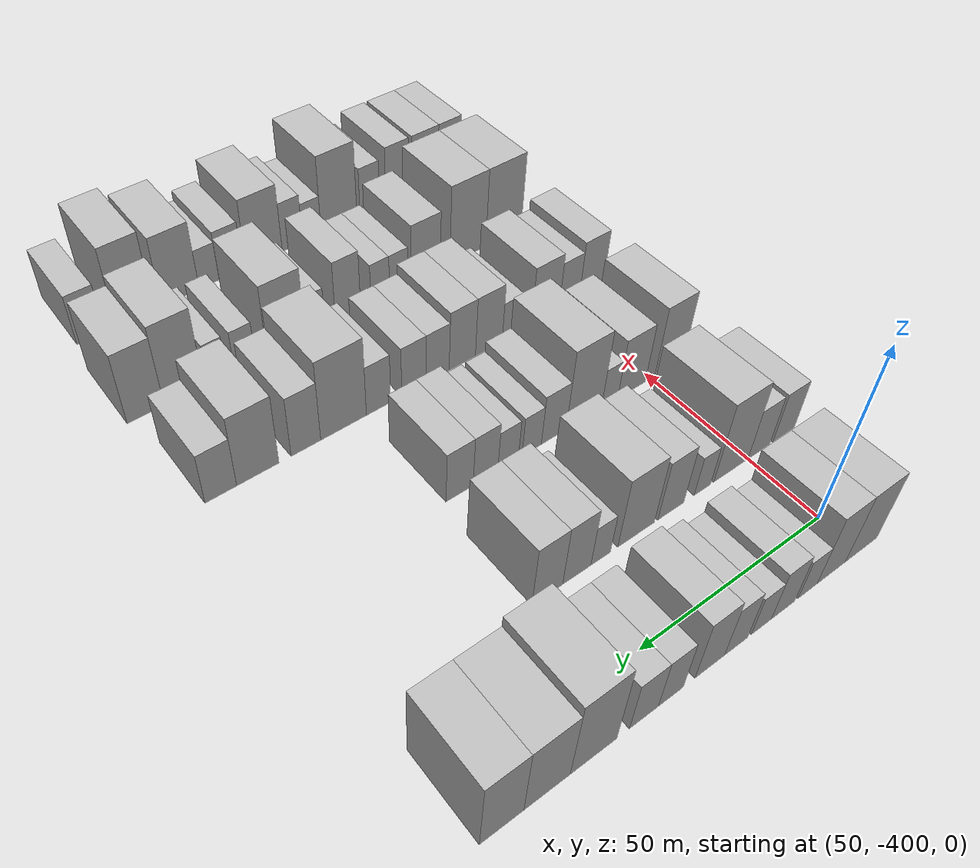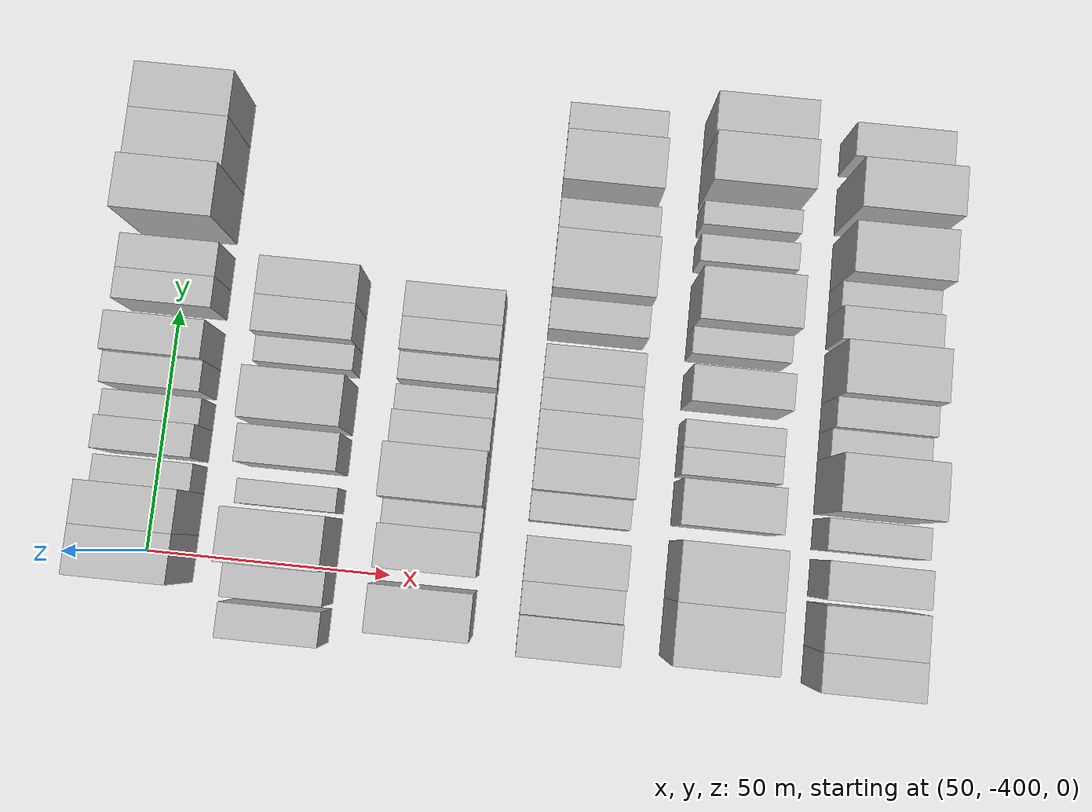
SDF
<sdf version="1.6">
 <world name="default">
  <model name="building_13">
   <static>1</static>
   <pose>50.0000 -400.6687 0 0.000000 0.000000 0.000000</pose>
   <link name="link">
    <pose>0 0 10.50 0 0 0</pose>
    <collision name="collision"><geometry><box><size>20.0000 9.6172 21.0000</size></box></geometry></collision>
    <visual name="visual">
     <cast_shadows>0</cast_shadows>
     <geometry><box><size>20.0000 9.6172 21.0000</size></box></geometry>
     <material>
      <script>
       <uri>model://HANNAS_wall/materials/scripts</uri>
       <uri>model://HANNAS_wall/materials/textures</uri>
       <name>vrc/HANNAS_wall</name>
      </script>
     </material>
    </visual>
   </link>
  </model>
  <model name="building_14">
   <static>1</static>
   <pose>50.0000 -391.6522 0 0.000000 0.000000 0.000000</pose>
   <link name="link">
    <pose>0 0 10.50 0 0 0</pose>
    <collision name="collision"><geometry><box><size>20.0000 8.4159 21.0000</size></box></geometry></collision>
    <visual name="visual">
     <cast_shadows>0</cast_shadows>
     <geometry><box><size>20.0000 8.4159 21.0000</size></box></geometry>
     <material>
      <script>
       <uri>model://HANNAS_wall/materials/scripts</uri>
       <uri>model://HANNAS_wall/materials/textures</uri>
       <name>vrc/HANNAS_wall</name>
      </script>
     </material>
    </visual>
   </link>
  </model>
  <model name="building_15">
   <static>1</static>
   <pose>50.0000 -384.7010 0 0.000000 0.000000 0.000000</pose>
   <link name="link">
    <pose>0 0 6.00 0 0 0</pose>
    <collision name="collision"><geometry><box><size>20.0000 5.4865 12.0000</size></box></geometry></collision>
    <visual name="visual">
     <cast_shadows>0</cast_shadows>
     <geometry><box><size>20.0000 5.4865 12.0000</size></box></geometry>
     <material>
      <script>
       <uri>model://HANNAS_wall/materials/scripts</uri>
       <uri>model://HANNAS_wall/materials/textures</uri>
       <name>vrc/HANNAS_wall</name>
      </script>
     </material>
    </visual>
   </link>
  </model>
  <model name="building_16">
   <static>1</static>
   <pose>50.0000 -377.6718 0 0.000000 0.000000 0.000000</pose>
   <link name="link">
    <pose>0 0 7.50 0 0 0</pose>
    <collision name="collision"><geometry><box><size>20.0000 6.5717 15.0000</size></box></geometry></collision>
    <visual name="visual">
     <cast_shadows>0</cast_shadows>
     <geometry><box><size>20.0000 6.5717 15.0000</size></box></geometry>
     <material>
      <script>
       <uri>model://HANNAS_wall/materials/scripts</uri>
       <uri>model://HANNAS_wall/materials/textures</uri>
       <name>vrc/HANNAS_wall</name>
      </script>
     </material>
    </visual>
   </link>
  </model>
  <model name="building_17">
   <static>1</static>
   <pose>50.0000 -371.6435 0 0.000000 0.000000 0.000000</pose>
   <link name="link">
    <pose>0 0 6.00 0 0 0</pose>
    <collision name="collision"><geometry><box><size>20.0000 5.4849 12.0000</size></box></geometry></collision>
    <visual name="visual">
     <cast_shadows>0</cast_shadows>
     <geometry><box><size>20.0000 5.4849 12.0000</size></box></geometry>
     <material>
      <script>
       <uri>model://HANNAS_wall/materials/scripts</uri>
       <uri>model://HANNAS_wall/materials/textures</uri>
       <name>vrc/HANNAS_wall</name>
      </script>
     </material>
    </visual>
   </link>
  </model>
  <model name="building_18">
   <static>1</static>
   <pose>50.0000 -364.8163 0 0.000000 0.000000 0.000000</pose>
   <link name="link">
    <pose>0 0 7.50 0 0 0</pose>
    <collision name="collision"><geometry><box><size>20.0000 6.1695 15.0000</size></box></geometry></collision>
    <visual name="visual">
     <cast_shadows>0</cast_shadows>
     <geometry><box><size>20.0000 6.1695 15.0000</size></box></geometry>
     <material>
      <script>
       <uri>model://HANNAS_wall/materials/scripts</uri>
       <uri>model://HANNAS_wall/materials/textures</uri>
       <name>vrc/HANNAS_wall</name>
      </script>
     </material>
    </visual>
   </link>
  </model>
  <model name="building_19">
   <static>1</static>
   <pose>50.0000 -357.8892 0 0.000000 0.000000 0.000000</pose>
   <link name="link">
    <pose>0 0 9.00 0 0 0</pose>
    <collision name="collision"><geometry><box><size>20.0000 7.6846 18.0000</size></box></geometry></collision>
    <visual name="visual">
     <cast_shadows>0</cast_shadows>
     <geometry><box><size>20.0000 7.6846 18.0000</size></box></geometry>
     <material>
      <script>
       <uri>model://HANNAS_wall/materials/scripts</uri>
       <uri>model://HANNAS_wall/materials/textures</uri>
       <name>vrc/HANNAS_wall</name>
      </script>
     </material>
    </visual>
   </link>
  </model>
  <model name="building_20">
   <static>1</static>
   <pose>50.0000 -347.9178 0 0.000000 0.000000 0.000000</pose>
   <link name="link">
    <pose>0 0 7.50 0 0 0</pose>
    <collision name="collision"><geometry><box><size>20.0000 6.2582 15.0000</size></box></geometry></collision>
    <visual name="visual">
     <cast_shadows>0</cast_shadows>
     <geometry><box><size>20.0000 6.2582 15.0000</size></box></geometry>
     <material>
      <script>
       <uri>model://HANNAS_wall/materials/scripts</uri>
       <uri>model://HANNAS_wall/materials/textures</uri>
       <name>vrc/HANNAS_wall</name>
      </script>
     </material>
    </visual>
   </link>
  </model>
  <model name="building_21">
   <static>1</static>
   <pose>50.0000 -341.2907 0 0.000000 0.000000 0.000000</pose>
   <link name="link">
    <pose>0 0 7.50 0 0 0</pose>
    <collision name="collision"><geometry><box><size>20.0000 6.9960 15.0000</size></box></geometry></collision>
    <visual name="visual">
     <cast_shadows>0</cast_shadows>
     <geometry><box><size>20.0000 6.9960 15.0000</size></box></geometry>
     <material>
      <script>
       <uri>model://HANNAS_wall/materials/scripts</uri>
       <uri>model://HANNAS_wall/materials/textures</uri>
       <name>vrc/HANNAS_wall</name>
      </script>
     </material>
    </visual>
   </link>
  </model>
  <model name="building_22">
   <static>1</static>
   <pose>50.0000 -329.3862 0 0.000000 0.000000 0.000000</pose>
   <link name="link">
    <pose>0 0 12.00 0 0 0</pose>
    <collision name="collision"><geometry><box><size>20.0000 10.8130 24.0000</size></box></geometry></collision>
    <visual name="visual">
     <cast_shadows>0</cast_shadows>
     <geometry><box><size>20.0000 10.8130 24.0000</size></box></geometry>
     <material>
      <script>
       <uri>model://HANNAS_wall/materials/scripts</uri>
       <uri>model://HANNAS_wall/materials/textures</uri>
       <name>vrc/HANNAS_wall</name>
      </script>
     </material>
    </visual>
   </link>
  </model>
  <model name="building_23">
   <static>1</static>
   <pose>50.0000 -318.8442 0 0.000000 0.000000 0.000000</pose>
   <link name="link">
    <pose>0 0 10.50 0 0 0</pose>
    <collision name="collision"><geometry><box><size>20.0000 10.2711 21.0000</size></box></geometry></collision>
    <visual name="visual">
     <cast_shadows>0</cast_shadows>
     <geometry><box><size>20.0000 10.2711 21.0000</size></box></geometry>
     <material>
      <script>
       <uri>model://HANNAS_wall/materials/scripts</uri>
       <uri>model://HANNAS_wall/materials/textures</uri>
       <name>vrc/HANNAS_wall</name>
      </script>
     </material>
    </visual>
   </link>
  </model>
  <model name="building_24">
   <static>1</static>
   <pose>50.0000 -308.9959 0 0.000000 0.000000 0.000000</pose>
   <link name="link">
    <pose>0 0 10.50 0 0 0</pose>
    <collision name="collision"><geometry><box><size>20.0000 9.4255 21.0000</size></box></geometry></collision>
    <visual name="visual">
     <cast_shadows>0</cast_shadows>
     <geometry><box><size>20.0000 9.4255 21.0000</size></box></geometry>
     <material>
      <script>
       <uri>model://HANNAS_wall/materials/scripts</uri>
       <uri>model://HANNAS_wall/materials/textures</uri>
       <name>vrc/HANNAS_wall</name>
      </script>
     </material>
    </visual>
   </link>
  </model>
  <model name="building_126">
   <static>1</static>
   <pose>79.0000 -411.2597 0 0.000000 0.000000 0.000000</pose>
   <link name="link">
    <pose>0 0 7.50 0 0 0</pose>
    <collision name="collision"><geometry><box><size>20.0000 6.8143 15.0000</size></box></geometry></collision>
    <visual name="visual">
     <cast_shadows>0</cast_shadows>
     <geometry><box><size>20.0000 6.8143 15.0000</size></box></geometry>
     <material>
      <script>
       <uri>model://HANNAS_wall/materials/scripts</uri>
       <uri>model://HANNAS_wall/materials/textures</uri>
       <name>vrc/HANNAS_wall</name>
      </script>
     </material>
    </visual>
   </link>
  </model>
  <model name="building_127">
   <static>1</static>
   <pose>79.0000 -403.4460 0 0.000000 0.000000 0.000000</pose>
   <link name="link">
    <pose>0 0 7.50 0 0 0</pose>
    <collision name="collision"><geometry><box><size>20.0000 6.8130 15.0000</size></box></geometry></collision>
    <visual name="visual">
     <cast_shadows>0</cast_shadows>
     <geometry><box><size>20.0000 6.8130 15.0000</size></box></geometry>
     <material>
      <script>
       <uri>model://HANNAS_wall/materials/scripts</uri>
       <uri>model://HANNAS_wall/materials/textures</uri>
       <name>vrc/HANNAS_wall</name>
      </script>
     </material>
    </visual>
   </link>
  </model>
  <model name="building_128">
   <static>1</static>
   <pose>79.0000 -394.8496 0 0.000000 0.000000 0.000000</pose>
   <link name="link">
    <pose>0 0 12.00 0 0 0</pose>
    <collision name="collision"><geometry><box><size>20.0000 10.3798 24.0000</size></box></geometry></collision>
    <visual name="visual">
     <cast_shadows>0</cast_shadows>
     <geometry><box><size>20.0000 10.3798 24.0000</size></box></geometry>
     <material>
      <script>
       <uri>model://HANNAS_wall/materials/scripts</uri>
       <uri>model://HANNAS_wall/materials/textures</uri>
       <name>vrc/HANNAS_wall</name>
      </script>
     </material>
    </visual>
   </link>
  </model>
  <model name="building_129">
   <static>1</static>
   <pose>79.0000 -386.2462 0 0.000000 0.000000 0.000000</pose>
   <link name="link">
    <pose>0 0 6.00 0 0 0</pose>
    <collision name="collision"><geometry><box><size>20.0000 4.8270 12.0000</size></box></geometry></collision>
    <visual name="visual">
     <cast_shadows>0</cast_shadows>
     <geometry><box><size>20.0000 4.8270 12.0000</size></box></geometry>
     <material>
      <script>
       <uri>model://HANNAS_wall/materials/scripts</uri>
       <uri>model://HANNAS_wall/materials/textures</uri>
       <name>vrc/HANNAS_wall</name>
      </script>
     </material>
    </visual>
   </link>
  </model>
  <model name="building_130">
   <static>1</static>
   <pose>79.0000 -377.1368 0 0.000000 0.000000 0.000000</pose>
   <link name="link">
    <pose>0 0 9.00 0 0 0</pose>
    <collision name="collision"><geometry><box><size>20.0000 7.3917 18.0000</size></box></geometry></collision>
    <visual name="visual">
     <cast_shadows>0</cast_shadows>
     <geometry><box><size>20.0000 7.3917 18.0000</size></box></geometry>
     <material>
      <script>
       <uri>model://HANNAS_wall/materials/scripts</uri>
       <uri>model://HANNAS_wall/materials/textures</uri>
       <name>vrc/HANNAS_wall</name>
      </script>
     </material>
    </visual>
   </link>
  </model>
  <model name="building_131">
   <static>1</static>
   <pose>79.0000 -367.4092 0 0.000000 0.000000 0.000000</pose>
   <link name="link">
    <pose>0 0 10.50 0 0 0</pose>
    <collision name="collision"><geometry><box><size>20.0000 10.0636 21.0000</size></box></geometry></collision>
    <visual name="visual">
     <cast_shadows>0</cast_shadows>
     <geometry><box><size>20.0000 10.0636 21.0000</size></box></geometry>
     <material>
      <script>
       <uri>model://HANNAS_wall/materials/scripts</uri>
       <uri>model://HANNAS_wall/materials/textures</uri>
       <name>vrc/HANNAS_wall</name>
      </script>
     </material>
    </visual>
   </link>
  </model>
  <model name="building_132">
   <static>1</static>
   <pose>79.0000 -357.7747 0 0.000000 0.000000 0.000000</pose>
   <link name="link">
    <pose>0 0 6.00 0 0 0</pose>
    <collision name="collision"><geometry><box><size>20.0000 5.2054 12.0000</size></box></geometry></collision>
    <visual name="visual">
     <cast_shadows>0</cast_shadows>
     <geometry><box><size>20.0000 5.2054 12.0000</size></box></geometry>
     <material>
      <script>
       <uri>model://HANNAS_wall/materials/scripts</uri>
       <uri>model://HANNAS_wall/materials/textures</uri>
       <name>vrc/HANNAS_wall</name>
      </script>
     </material>
    </visual>
   </link>
  </model>
  <model name="building_133">
   <static>1</static>
   <pose>79.0000 -351.5223 0 0.000000 0.000000 0.000000</pose>
   <link name="link">
    <pose>0 0 9.00 0 0 0</pose>
    <collision name="collision"><geometry><box><size>20.0000 7.2995 18.0000</size></box></geometry></collision>
    <visual name="visual">
     <cast_shadows>0</cast_shadows>
     <geometry><box><size>20.0000 7.2995 18.0000</size></box></geometry>
     <material>
      <script>
       <uri>model://HANNAS_wall/materials/scripts</uri>
       <uri>model://HANNAS_wall/materials/textures</uri>
       <name>vrc/HANNAS_wall</name>
      </script>
     </material>
    </visual>
   </link>
  </model>
  <model name="building_134">
   <static>1</static>
   <pose>79.0000 -343.9998 0 0.000000 0.000000 0.000000</pose>
   <link name="link">
    <pose>0 0 9.00 0 0 0</pose>
    <collision name="collision"><geometry><box><size>20.0000 7.7453 18.0000</size></box></geometry></collision>
    <visual name="visual">
     <cast_shadows>0</cast_shadows>
     <geometry><box><size>20.0000 7.7453 18.0000</size></box></geometry>
     <material>
      <script>
       <uri>model://HANNAS_wall/materials/scripts</uri>
       <uri>model://HANNAS_wall/materials/textures</uri>
       <name>vrc/HANNAS_wall</name>
      </script>
     </material>
    </visual>
   </link>
  </model>
  <model name="building_237">
   <static>1</static>
   <pose>108.0000 -405.8018 0 0.000000 0.000000 0.000000</pose>
   <link name="link">
    <pose>0 0 10.50 0 0 0</pose>
    <collision name="collision"><geometry><box><size>20.0000 9.1742 21.0000</size></box></geometry></collision>
    <visual name="visual">
     <cast_shadows>0</cast_shadows>
     <geometry><box><size>20.0000 9.1742 21.0000</size></box></geometry>
     <material>
      <script>
       <uri>model://HANNAS_wall/materials/scripts</uri>
       <uri>model://HANNAS_wall/materials/textures</uri>
       <name>vrc/HANNAS_wall</name>
      </script>
     </material>
    </visual>
   </link>
  </model>
  <model name="building_238">
   <static>1</static>
   <pose>108.0000 -393.9597 0 0.000000 0.000000 0.000000</pose>
   <link name="link">
    <pose>0 0 9.00 0 0 0</pose>
    <collision name="collision"><geometry><box><size>20.0000 8.5100 18.0000</size></box></geometry></collision>
    <visual name="visual">
     <cast_shadows>0</cast_shadows>
     <geometry><box><size>20.0000 8.5100 18.0000</size></box></geometry>
     <material>
      <script>
       <uri>model://HANNAS_wall/materials/scripts</uri>
       <uri>model://HANNAS_wall/materials/textures</uri>
       <name>vrc/HANNAS_wall</name>
      </script>
     </material>
    </visual>
   </link>
  </model>
  <model name="building_239">
   <static>1</static>
   <pose>108.0000 -387.2500 0 0.000000 0.000000 0.000000</pose>
   <link name="link">
    <pose>0 0 6.00 0 0 0</pose>
    <collision name="collision"><geometry><box><size>20.0000 4.9093 12.0000</size></box></geometry></collision>
    <visual name="visual">
     <cast_shadows>0</cast_shadows>
     <geometry><box><size>20.0000 4.9093 12.0000</size></box></geometry>
     <material>
      <script>
       <uri>model://HANNAS_wall/materials/scripts</uri>
       <uri>model://HANNAS_wall/materials/textures</uri>
       <name>vrc/HANNAS_wall</name>
      </script>
     </material>
    </visual>
   </link>
  </model>
  <model name="building_240">
   <static>1</static>
   <pose>108.0000 -379.6127 0 0.000000 0.000000 0.000000</pose>
   <link name="link">
    <pose>0 0 12.00 0 0 0</pose>
    <collision name="collision"><geometry><box><size>20.0000 10.3654 24.0000</size></box></geometry></collision>
    <visual name="visual">
     <cast_shadows>0</cast_shadows>
     <geometry><box><size>20.0000 10.3654 24.0000</size></box></geometry>
     <material>
      <script>
       <uri>model://HANNAS_wall/materials/scripts</uri>
       <uri>model://HANNAS_wall/materials/textures</uri>
       <name>vrc/HANNAS_wall</name>
      </script>
     </material>
    </visual>
   </link>
  </model>
  <model name="building_241">
   <static>1</static>
   <pose>108.0000 -370.9066 0 0.000000 0.000000 0.000000</pose>
   <link name="link">
    <pose>0 0 7.50 0 0 0</pose>
    <collision name="collision"><geometry><box><size>20.0000 7.0468 15.0000</size></box></geometry></collision>
    <visual name="visual">
     <cast_shadows>0</cast_shadows>
     <geometry><box><size>20.0000 7.0468 15.0000</size></box></geometry>
     <material>
      <script>
       <uri>model://HANNAS_wall/materials/scripts</uri>
       <uri>model://HANNAS_wall/materials/textures</uri>
       <name>vrc/HANNAS_wall</name>
      </script>
     </material>
    </visual>
   </link>
  </model>
  <model name="building_242">
   <static>1</static>
   <pose>108.0000 -364.6866 0 0.000000 0.000000 0.000000</pose>
   <link name="link">
    <pose>0 0 6.00 0 0 0</pose>
    <collision name="collision"><geometry><box><size>20.0000 5.3931 12.0000</size></box></geometry></collision>
    <visual name="visual">
     <cast_shadows>0</cast_shadows>
     <geometry><box><size>20.0000 5.3931 12.0000</size></box></geometry>
     <material>
      <script>
       <uri>model://HANNAS_wall/materials/scripts</uri>
       <uri>model://HANNAS_wall/materials/textures</uri>
       <name>vrc/HANNAS_wall</name>
      </script>
     </material>
    </visual>
   </link>
  </model>
  <model name="building_243">
   <static>1</static>
   <pose>108.0000 -358.1893 0 0.000000 0.000000 0.000000</pose>
   <link name="link">
    <pose>0 0 6.00 0 0 0</pose>
    <collision name="collision"><geometry><box><size>20.0000 5.6014 12.0000</size></box></geometry></collision>
    <visual name="visual">
     <cast_shadows>0</cast_shadows>
     <geometry><box><size>20.0000 5.6014 12.0000</size></box></geometry>
     <material>
      <script>
       <uri>model://HANNAS_wall/materials/scripts</uri>
       <uri>model://HANNAS_wall/materials/textures</uri>
       <name>vrc/HANNAS_wall</name>
      </script>
     </material>
    </visual>
   </link>
  </model>
  <model name="building_244">
   <static>1</static>
   <pose>108.0000 -352.0878 0 0.000000 0.000000 0.000000</pose>
   <link name="link">
    <pose>0 0 7.50 0 0 0</pose>
    <collision name="collision"><geometry><box><size>20.0000 6.6018 15.0000</size></box></geometry></collision>
    <visual name="visual">
     <cast_shadows>0</cast_shadows>
     <geometry><box><size>20.0000 6.6018 15.0000</size></box></geometry>
     <material>
      <script>
       <uri>model://HANNAS_wall/materials/scripts</uri>
       <uri>model://HANNAS_wall/materials/textures</uri>
       <name>vrc/HANNAS_wall</name>
      </script>
     </material>
    </visual>
   </link>
  </model>
  <model name="building_245">
   <static>1</static>
   <pose>108.0000 -345.2501 0 0.000000 0.000000 0.000000</pose>
   <link name="link">
    <pose>0 0 7.50 0 0 0</pose>
    <collision name="collision"><geometry><box><size>20.0000 7.0736 15.0000</size></box></geometry></collision>
    <visual name="visual">
     <cast_shadows>0</cast_shadows>
     <geometry><box><size>20.0000 7.0736 15.0000</size></box></geometry>
     <material>
      <script>
       <uri>model://HANNAS_wall/materials/scripts</uri>
       <uri>model://HANNAS_wall/materials/textures</uri>
       <name>vrc/HANNAS_wall</name>
      </script>
     </material>
    </visual>
   </link>
  </model>
  <model name="building_352">
   <static>1</static>
   <pose>137.0000 -408.1759 0 0.000000 0.000000 0.000000</pose>
   <link name="link">
    <pose>0 0 9.00 0 0 0</pose>
    <collision name="collision"><geometry><box><size>20.0000 7.8254 18.0000</size></box></geometry></collision>
    <visual name="visual">
     <cast_shadows>0</cast_shadows>
     <geometry><box><size>20.0000 7.8254 18.0000</size></box></geometry>
     <material>
      <script>
       <uri>model://HANNAS_wall/materials/scripts</uri>
       <uri>model://HANNAS_wall/materials/textures</uri>
       <name>vrc/HANNAS_wall</name>
      </script>
     </material>
    </visual>
   </link>
  </model>
  <model name="building_353">
   <static>1</static>
   <pose>137.0000 -401.0369 0 0.000000 0.000000 0.000000</pose>
   <link name="link">
    <pose>0 0 7.50 0 0 0</pose>
    <collision name="collision"><geometry><box><size>20.0000 6.4526 15.0000</size></box></geometry></collision>
    <visual name="visual">
     <cast_shadows>0</cast_shadows>
     <geometry><box><size>20.0000 6.4526 15.0000</size></box></geometry>
     <material>
      <script>
       <uri>model://HANNAS_wall/materials/scripts</uri>
       <uri>model://HANNAS_wall/materials/textures</uri>
       <name>vrc/HANNAS_wall</name>
      </script>
     </material>
    </visual>
   </link>
  </model>
  <model name="building_354">
   <static>1</static>
   <pose>137.0000 -393.5032 0 0.000000 0.000000 0.000000</pose>
   <link name="link">
    <pose>0 0 9.00 0 0 0</pose>
    <collision name="collision"><geometry><box><size>20.0000 8.6146 18.0000</size></box></geometry></collision>
    <visual name="visual">
     <cast_shadows>0</cast_shadows>
     <geometry><box><size>20.0000 8.6146 18.0000</size></box></geometry>
     <material>
      <script>
       <uri>model://HANNAS_wall/materials/scripts</uri>
       <uri>model://HANNAS_wall/materials/textures</uri>
       <name>vrc/HANNAS_wall</name>
      </script>
     </material>
    </visual>
   </link>
  </model>
  <model name="building_355">
   <static>1</static>
   <pose>137.0000 -383.2529 0 0.000000 0.000000 0.000000</pose>
   <link name="link">
    <pose>0 0 6.00 0 0 0</pose>
    <collision name="collision"><geometry><box><size>20.0000 5.8861 12.0000</size></box></geometry></collision>
    <visual name="visual">
     <cast_shadows>0</cast_shadows>
     <geometry><box><size>20.0000 5.8861 12.0000</size></box></geometry>
     <material>
      <script>
       <uri>model://HANNAS_wall/materials/scripts</uri>
       <uri>model://HANNAS_wall/materials/textures</uri>
       <name>vrc/HANNAS_wall</name>
      </script>
     </material>
    </visual>
   </link>
  </model>
  <model name="building_356">
   <static>1</static>
   <pose>137.0000 -376.3391 0 0.000000 0.000000 0.000000</pose>
   <link name="link">
    <pose>0 0 9.00 0 0 0</pose>
    <collision name="collision"><geometry><box><size>20.0000 7.9416 18.0000</size></box></geometry></collision>
    <visual name="visual">
     <cast_shadows>0</cast_shadows>
     <geometry><box><size>20.0000 7.9416 18.0000</size></box></geometry>
     <material>
      <script>
       <uri>model://HANNAS_wall/materials/scripts</uri>
       <uri>model://HANNAS_wall/materials/textures</uri>
       <name>vrc/HANNAS_wall</name>
      </script>
     </material>
    </visual>
   </link>
  </model>
  <model name="building_357">
   <static>1</static>
   <pose>137.0000 -368.5552 0 0.000000 0.000000 0.000000</pose>
   <link name="link">
    <pose>0 0 9.00 0 0 0</pose>
    <collision name="collision"><geometry><box><size>20.0000 7.6262 18.0000</size></box></geometry></collision>
    <visual name="visual">
     <cast_shadows>0</cast_shadows>
     <geometry><box><size>20.0000 7.6262 18.0000</size></box></geometry>
     <material>
      <script>
       <uri>model://HANNAS_wall/materials/scripts</uri>
       <uri>model://HANNAS_wall/materials/textures</uri>
       <name>vrc/HANNAS_wall</name>
      </script>
     </material>
    </visual>
   </link>
  </model>
  <model name="building_358">
   <static>1</static>
   <pose>137.0000 -361.4488 0 0.000000 0.000000 0.000000</pose>
   <link name="link">
    <pose>0 0 7.50 0 0 0</pose>
    <collision name="collision"><geometry><box><size>20.0000 6.5866 15.0000</size></box></geometry></collision>
    <visual name="visual">
     <cast_shadows>0</cast_shadows>
     <geometry><box><size>20.0000 6.5866 15.0000</size></box></geometry>
     <material>
      <script>
       <uri>model://HANNAS_wall/materials/scripts</uri>
       <uri>model://HANNAS_wall/materials/textures</uri>
       <name>vrc/HANNAS_wall</name>
      </script>
     </material>
    </visual>
   </link>
  </model>
  <model name="building_359">
   <static>1</static>
   <pose>137.0000 -354.7890 0 0.000000 0.000000 0.000000</pose>
   <link name="link">
    <pose>0 0 7.50 0 0 0</pose>
    <collision name="collision"><geometry><box><size>20.0000 6.7330 15.0000</size></box></geometry></collision>
    <visual name="visual">
     <cast_shadows>0</cast_shadows>
     <geometry><box><size>20.0000 6.7330 15.0000</size></box></geometry>
     <material>
      <script>
       <uri>model://HANNAS_wall/materials/scripts</uri>
       <uri>model://HANNAS_wall/materials/textures</uri>
       <name>vrc/HANNAS_wall</name>
      </script>
     </material>
    </visual>
   </link>
  </model>
  <model name="building_360">
   <static>1</static>
   <pose>137.0000 -345.1615 0 0.000000 0.000000 0.000000</pose>
   <link name="link">
    <pose>0 0 7.50 0 0 0</pose>
    <collision name="collision"><geometry><box><size>20.0000 6.5219 15.0000</size></box></geometry></collision>
    <visual name="visual">
     <cast_shadows>0</cast_shadows>
     <geometry><box><size>20.0000 6.5219 15.0000</size></box></geometry>
     <material>
      <script>
       <uri>model://HANNAS_wall/materials/scripts</uri>
       <uri>model://HANNAS_wall/materials/textures</uri>
       <name>vrc/HANNAS_wall</name>
      </script>
     </material>
    </visual>
   </link>
  </model>
  <model name="building_361">
   <static>1</static>
   <pose>137.0000 -335.9525 0 0.000000 0.000000 0.000000</pose>
   <link name="link">
    <pose>0 0 12.00 0 0 0</pose>
    <collision name="collision"><geometry><box><size>20.0000 11.8962 24.0000</size></box></geometry></collision>
    <visual name="visual">
     <cast_shadows>0</cast_shadows>
     <geometry><box><size>20.0000 11.8962 24.0000</size></box></geometry>
     <material>
      <script>
       <uri>model://HANNAS_wall/materials/scripts</uri>
       <uri>model://HANNAS_wall/materials/textures</uri>
       <name>vrc/HANNAS_wall</name>
      </script>
     </material>
    </visual>
   </link>
  </model>
  <model name="building_362">
   <static>1</static>
   <pose>137.0000 -326.2628 0 0.000000 0.000000 0.000000</pose>
   <link name="link">
    <pose>0 0 9.00 0 0 0</pose>
    <collision name="collision"><geometry><box><size>20.0000 7.4832 18.0000</size></box></geometry></collision>
    <visual name="visual">
     <cast_shadows>0</cast_shadows>
     <geometry><box><size>20.0000 7.4832 18.0000</size></box></geometry>
     <material>
      <script>
       <uri>model://HANNAS_wall/materials/scripts</uri>
       <uri>model://HANNAS_wall/materials/textures</uri>
       <name>vrc/HANNAS_wall</name>
      </script>
     </material>
    </visual>
   </link>
  </model>
  <model name="building_363">
   <static>1</static>
   <pose>137.0000 -314.4046 0 0.000000 0.000000 0.000000</pose>
   <link name="link">
    <pose>0 0 10.50 0 0 0</pose>
    <collision name="collision"><geometry><box><size>20.0000 10.2331 21.0000</size></box></geometry></collision>
    <visual name="visual">
     <cast_shadows>0</cast_shadows>
     <geometry><box><size>20.0000 10.2331 21.0000</size></box></geometry>
     <material>
      <script>
       <uri>model://HANNAS_wall/materials/scripts</uri>
       <uri>model://HANNAS_wall/materials/textures</uri>
       <name>vrc/HANNAS_wall</name>
      </script>
     </material>
    </visual>
   </link>
  </model>
  <model name="building_364">
   <static>1</static>
   <pose>137.0000 -305.5506 0 0.000000 0.000000 0.000000</pose>
   <link name="link">
    <pose>0 0 7.50 0 0 0</pose>
    <collision name="collision"><geometry><box><size>20.0000 7.4750 15.0000</size></box></geometry></collision>
    <visual name="visual">
     <cast_shadows>0</cast_shadows>
     <geometry><box><size>20.0000 7.4750 15.0000</size></box></geometry>
     <material>
      <script>
       <uri>model://HANNAS_wall/materials/scripts</uri>
       <uri>model://HANNAS_wall/materials/textures</uri>
       <name>vrc/HANNAS_wall</name>
      </script>
     </material>
    </visual>
   </link>
  </model>
  <model name="building_464">
   <static>1</static>
   <pose>166.0000 -404.5101 0 0.000000 0.000000 0.000000</pose>
   <link name="link">
    <pose>0 0 12.00 0 0 0</pose>
    <collision name="collision"><geometry><box><size>20.0000 11.7443 24.0000</size></box></geometry></collision>
    <visual name="visual">
     <cast_shadows>0</cast_shadows>
     <geometry><box><size>20.0000 11.7443 24.0000</size></box></geometry>
     <material>
      <script>
       <uri>model://HANNAS_wall/materials/scripts</uri>
       <uri>model://HANNAS_wall/materials/textures</uri>
       <name>vrc/HANNAS_wall</name>
      </script>
     </material>
    </visual>
   </link>
  </model>
  <model name="building_465">
   <static>1</static>
   <pose>166.0000 -392.9054 0 0.000000 0.000000 0.000000</pose>
   <link name="link">
    <pose>0 0 12.00 0 0 0</pose>
    <collision name="collision"><geometry><box><size>20.0000 11.4651 24.0000</size></box></geometry></collision>
    <visual name="visual">
     <cast_shadows>0</cast_shadows>
     <geometry><box><size>20.0000 11.4651 24.0000</size></box></geometry>
     <material>
      <script>
       <uri>model://HANNAS_wall/materials/scripts</uri>
       <uri>model://HANNAS_wall/materials/textures</uri>
       <name>vrc/HANNAS_wall</name>
      </script>
     </material>
    </visual>
   </link>
  </model>
  <model name="building_466">
   <static>1</static>
   <pose>166.0000 -379.6856 0 0.000000 0.000000 0.000000</pose>
   <link name="link">
    <pose>0 0 9.00 0 0 0</pose>
    <collision name="collision"><geometry><box><size>20.0000 8.9743 18.0000</size></box></geometry></collision>
    <visual name="visual">
     <cast_shadows>0</cast_shadows>
     <geometry><box><size>20.0000 8.9743 18.0000</size></box></geometry>
     <material>
      <script>
       <uri>model://HANNAS_wall/materials/scripts</uri>
       <uri>model://HANNAS_wall/materials/textures</uri>
       <name>vrc/HANNAS_wall</name>
      </script>
     </material>
    </visual>
   </link>
  </model>
  <model name="building_467">
   <static>1</static>
   <pose>166.0000 -371.4517 0 0.000000 0.000000 0.000000</pose>
   <link name="link">
    <pose>0 0 6.00 0 0 0</pose>
    <collision name="collision"><geometry><box><size>20.0000 5.4934 12.0000</size></box></geometry></collision>
    <visual name="visual">
     <cast_shadows>0</cast_shadows>
     <geometry><box><size>20.0000 5.4934 12.0000</size></box></geometry>
     <material>
      <script>
       <uri>model://HANNAS_wall/materials/scripts</uri>
       <uri>model://HANNAS_wall/materials/textures</uri>
       <name>vrc/HANNAS_wall</name>
      </script>
     </material>
    </visual>
   </link>
  </model>
  <model name="building_468">
   <static>1</static>
   <pose>166.0000 -365.9458 0 0.000000 0.000000 0.000000</pose>
   <link name="link">
    <pose>0 0 6.00 0 0 0</pose>
    <collision name="collision"><geometry><box><size>20.0000 5.5185 12.0000</size></box></geometry></collision>
    <visual name="visual">
     <cast_shadows>0</cast_shadows>
     <geometry><box><size>20.0000 5.5185 12.0000</size></box></geometry>
     <material>
      <script>
       <uri>model://HANNAS_wall/materials/scripts</uri>
       <uri>model://HANNAS_wall/materials/textures</uri>
       <name>vrc/HANNAS_wall</name>
      </script>
     </material>
    </visual>
   </link>
  </model>
  <model name="building_469">
   <static>1</static>
   <pose>166.0000 -356.5743 0 0.000000 0.000000 0.000000</pose>
   <link name="link">
    <pose>0 0 9.00 0 0 0</pose>
    <collision name="collision"><geometry><box><size>20.0000 7.2244 18.0000</size></box></geometry></collision>
    <visual name="visual">
     <cast_shadows>0</cast_shadows>
     <geometry><box><size>20.0000 7.2244 18.0000</size></box></geometry>
     <material>
      <script>
       <uri>model://HANNAS_wall/materials/scripts</uri>
       <uri>model://HANNAS_wall/materials/textures</uri>
       <name>vrc/HANNAS_wall</name>
      </script>
     </material>
    </visual>
   </link>
  </model>
  <model name="building_470">
   <static>1</static>
   <pose>166.0000 -347.2063 0 0.000000 0.000000 0.000000</pose>
   <link name="link">
    <pose>0 0 6.00 0 0 0</pose>
    <collision name="collision"><geometry><box><size>20.0000 5.5116 12.0000</size></box></geometry></collision>
    <visual name="visual">
     <cast_shadows>0</cast_shadows>
     <geometry><box><size>20.0000 5.5116 12.0000</size></box></geometry>
     <material>
      <script>
       <uri>model://HANNAS_wall/materials/scripts</uri>
       <uri>model://HANNAS_wall/materials/textures</uri>
       <name>vrc/HANNAS_wall</name>
      </script>
     </material>
    </visual>
   </link>
  </model>
  <model name="building_471">
   <static>1</static>
   <pose>166.0000 -339.2238 0 0.000000 0.000000 0.000000</pose>
   <link name="link">
    <pose>0 0 10.50 0 0 0</pose>
    <collision name="collision"><geometry><box><size>20.0000 10.4535 21.0000</size></box></geometry></collision>
    <visual name="visual">
     <cast_shadows>0</cast_shadows>
     <geometry><box><size>20.0000 10.4535 21.0000</size></box></geometry>
     <material>
      <script>
       <uri>model://HANNAS_wall/materials/scripts</uri>
       <uri>model://HANNAS_wall/materials/textures</uri>
       <name>vrc/HANNAS_wall</name>
      </script>
     </material>
    </visual>
   </link>
  </model>
  <model name="building_472">
   <static>1</static>
   <pose>166.0000 -328.2097 0 0.000000 0.000000 0.000000</pose>
   <link name="link">
    <pose>0 0 6.00 0 0 0</pose>
    <collision name="collision"><geometry><box><size>20.0000 5.5749 12.0000</size></box></geometry></collision>
    <visual name="visual">
     <cast_shadows>0</cast_shadows>
     <geometry><box><size>20.0000 5.5749 12.0000</size></box></geometry>
     <material>
      <script>
       <uri>model://HANNAS_wall/materials/scripts</uri>
       <uri>model://HANNAS_wall/materials/textures</uri>
       <name>vrc/HANNAS_wall</name>
      </script>
     </material>
    </visual>
   </link>
  </model>
  <model name="building_473">
   <static>1</static>
   <pose>166.0000 -320.9873 0 0.000000 0.000000 0.000000</pose>
   <link name="link">
    <pose>0 0 6.00 0 0 0</pose>
    <collision name="collision"><geometry><box><size>20.0000 4.8699 12.0000</size></box></geometry></collision>
    <visual name="visual">
     <cast_shadows>0</cast_shadows>
     <geometry><box><size>20.0000 4.8699 12.0000</size></box></geometry>
     <material>
      <script>
       <uri>model://HANNAS_wall/materials/scripts</uri>
       <uri>model://HANNAS_wall/materials/textures</uri>
       <name>vrc/HANNAS_wall</name>
      </script>
     </material>
    </visual>
   </link>
  </model>
  <model name="building_474">
   <static>1</static>
   <pose>166.0000 -312.5834 0 0.000000 0.000000 0.000000</pose>
   <link name="link">
    <pose>0 0 12.00 0 0 0</pose>
    <collision name="collision"><geometry><box><size>20.0000 9.9379 24.0000</size></box></geometry></collision>
    <visual name="visual">
     <cast_shadows>0</cast_shadows>
     <geometry><box><size>20.0000 9.9379 24.0000</size></box></geometry>
     <material>
      <script>
       <uri>model://HANNAS_wall/materials/scripts</uri>
       <uri>model://HANNAS_wall/materials/textures</uri>
       <name>vrc/HANNAS_wall</name>
      </script>
     </material>
    </visual>
   </link>
  </model>
  <model name="building_475">
   <static>1</static>
   <pose>166.0000 -303.1091 0 0.000000 0.000000 0.000000</pose>
   <link name="link">
    <pose>0 0 10.50 0 0 0</pose>
    <collision name="collision"><geometry><box><size>20.0000 9.0105 21.0000</size></box></geometry></collision>
    <visual name="visual">
     <cast_shadows>0</cast_shadows>
     <geometry><box><size>20.0000 9.0105 21.0000</size></box></geometry>
     <material>
      <script>
       <uri>model://HANNAS_wall/materials/scripts</uri>
       <uri>model://HANNAS_wall/materials/textures</uri>
       <name>vrc/HANNAS_wall</name>
      </script>
     </material>
    </visual>
   </link>
  </model>
  <model name="building_578">
   <static>1</static>
   <pose>195.0000 -409.1501 0 0.000000 0.000000 0.000000</pose>
   <link name="link">
    <pose>0 0 9.00 0 0 0</pose>
    <collision name="collision"><geometry><box><size>20.0000 7.5385 18.0000</size></box></geometry></collision>
    <visual name="visual">
     <cast_shadows>0</cast_shadows>
     <geometry><box><size>20.0000 7.5385 18.0000</size></box></geometry>
     <material>
      <script>
       <uri>model://HANNAS_wall/materials/scripts</uri>
       <uri>model://HANNAS_wall/materials/textures</uri>
       <name>vrc/HANNAS_wall</name>
      </script>
     </material>
    </visual>
   </link>
  </model>
  <model name="building_579">
   <static>1</static>
   <pose>195.0000 -400.9583 0 0.000000 0.000000 0.000000</pose>
   <link name="link">
    <pose>0 0 9.00 0 0 0</pose>
    <collision name="collision"><geometry><box><size>20.0000 8.8451 18.0000</size></box></geometry></collision>
    <visual name="visual">
     <cast_shadows>0</cast_shadows>
     <geometry><box><size>20.0000 8.8451 18.0000</size></box></geometry>
     <material>
      <script>
       <uri>model://HANNAS_wall/materials/scripts</uri>
       <uri>model://HANNAS_wall/materials/textures</uri>
       <name>vrc/HANNAS_wall</name>
      </script>
     </material>
    </visual>
   </link>
  </model>
  <model name="building_580">
   <static>1</static>
   <pose>195.0000 -391.8005 0 0.000000 0.000000 0.000000</pose>
   <link name="link">
    <pose>0 0 9.00 0 0 0</pose>
    <collision name="collision"><geometry><box><size>20.0000 7.4706 18.0000</size></box></geometry></collision>
    <visual name="visual">
     <cast_shadows>0</cast_shadows>
     <geometry><box><size>20.0000 7.4706 18.0000</size></box></geometry>
     <material>
      <script>
       <uri>model://HANNAS_wall/materials/scripts</uri>
       <uri>model://HANNAS_wall/materials/textures</uri>
       <name>vrc/HANNAS_wall</name>
      </script>
     </material>
    </visual>
   </link>
  </model>
  <model name="building_581">
   <static>1</static>
   <pose>195.0000 -382.9471 0 0.000000 0.000000 0.000000</pose>
   <link name="link">
    <pose>0 0 7.50 0 0 0</pose>
    <collision name="collision"><geometry><box><size>20.0000 6.2360 15.0000</size></box></geometry></collision>
    <visual name="visual">
     <cast_shadows>0</cast_shadows>
     <geometry><box><size>20.0000 6.2360 15.0000</size></box></geometry>
     <material>
      <script>
       <uri>model://HANNAS_wall/materials/scripts</uri>
       <uri>model://HANNAS_wall/materials/textures</uri>
       <name>vrc/HANNAS_wall</name>
      </script>
     </material>
    </visual>
   </link>
  </model>
  <model name="building_582">
   <static>1</static>
   <pose>195.0000 -373.2792 0 0.000000 0.000000 0.000000</pose>
   <link name="link">
    <pose>0 0 12.00 0 0 0</pose>
    <collision name="collision"><geometry><box><size>20.0000 11.0998 24.0000</size></box></geometry></collision>
    <visual name="visual">
     <cast_shadows>0</cast_shadows>
     <geometry><box><size>20.0000 11.0998 24.0000</size></box></geometry>
     <material>
      <script>
       <uri>model://HANNAS_wall/materials/scripts</uri>
       <uri>model://HANNAS_wall/materials/textures</uri>
       <name>vrc/HANNAS_wall</name>
      </script>
     </material>
    </visual>
   </link>
  </model>
  <model name="building_583">
   <static>1</static>
   <pose>195.0000 -364.9130 0 0.000000 0.000000 0.000000</pose>
   <link name="link">
    <pose>0 0 6.00 0 0 0</pose>
    <collision name="collision"><geometry><box><size>20.0000 5.6326 12.0000</size></box></geometry></collision>
    <visual name="visual">
     <cast_shadows>0</cast_shadows>
     <geometry><box><size>20.0000 5.6326 12.0000</size></box></geometry>
     <material>
      <script>
       <uri>model://HANNAS_wall/materials/scripts</uri>
       <uri>model://HANNAS_wall/materials/textures</uri>
       <name>vrc/HANNAS_wall</name>
      </script>
     </material>
    </visual>
   </link>
  </model>
  <model name="building_584">
   <static>1</static>
   <pose>195.0000 -359.0532 0 0.000000 0.000000 0.000000</pose>
   <link name="link">
    <pose>0 0 7.50 0 0 0</pose>
    <collision name="collision"><geometry><box><size>20.0000 6.0870 15.0000</size></box></geometry></collision>
    <visual name="visual">
     <cast_shadows>0</cast_shadows>
     <geometry><box><size>20.0000 6.0870 15.0000</size></box></geometry>
     <material>
      <script>
       <uri>model://HANNAS_wall/materials/scripts</uri>
       <uri>model://HANNAS_wall/materials/textures</uri>
       <name>vrc/HANNAS_wall</name>
      </script>
     </material>
    </visual>
   </link>
  </model>
  <model name="building_585">
   <static>1</static>
   <pose>195.0000 -350.7672 0 0.000000 0.000000 0.000000</pose>
   <link name="link">
    <pose>0 0 10.50 0 0 0</pose>
    <collision name="collision"><geometry><box><size>20.0000 10.4851 21.0000</size></box></geometry></collision>
    <visual name="visual">
     <cast_shadows>0</cast_shadows>
     <geometry><box><size>20.0000 10.4851 21.0000</size></box></geometry>
     <material>
      <script>
       <uri>model://HANNAS_wall/materials/scripts</uri>
       <uri>model://HANNAS_wall/materials/textures</uri>
       <name>vrc/HANNAS_wall</name>
      </script>
     </material>
    </visual>
   </link>
  </model>
  <model name="building_586">
   <static>1</static>
   <pose>195.0000 -341.1468 0 0.000000 0.000000 0.000000</pose>
   <link name="link">
    <pose>0 0 7.50 0 0 0</pose>
    <collision name="collision"><geometry><box><size>20.0000 6.7557 15.0000</size></box></geometry></collision>
    <visual name="visual">
     <cast_shadows>0</cast_shadows>
     <geometry><box><size>20.0000 6.7557 15.0000</size></box></geometry>
     <material>
      <script>
       <uri>model://HANNAS_wall/materials/scripts</uri>
       <uri>model://HANNAS_wall/materials/textures</uri>
       <name>vrc/HANNAS_wall</name>
      </script>
     </material>
    </visual>
   </link>
  </model>
  <model name="building_587">
   <static>1</static>
   <pose>195.0000 -335.0086 0 0.000000 0.000000 0.000000</pose>
   <link name="link">
    <pose>0 0 6.00 0 0 0</pose>
    <collision name="collision"><geometry><box><size>20.0000 5.5207 12.0000</size></box></geometry></collision>
    <visual name="visual">
     <cast_shadows>0</cast_shadows>
     <geometry><box><size>20.0000 5.5207 12.0000</size></box></geometry>
     <material>
      <script>
       <uri>model://HANNAS_wall/materials/scripts</uri>
       <uri>model://HANNAS_wall/materials/textures</uri>
       <name>vrc/HANNAS_wall</name>
      </script>
     </material>
    </visual>
   </link>
  </model>
  <model name="building_588">
   <static>1</static>
   <pose>195.0000 -327.1095 0 0.000000 0.000000 0.000000</pose>
   <link name="link">
    <pose>0 0 10.50 0 0 0</pose>
    <collision name="collision"><geometry><box><size>20.0000 10.2774 21.0000</size></box></geometry></collision>
    <visual name="visual">
     <cast_shadows>0</cast_shadows>
     <geometry><box><size>20.0000 10.2774 21.0000</size></box></geometry>
     <material>
      <script>
       <uri>model://HANNAS_wall/materials/scripts</uri>
       <uri>model://HANNAS_wall/materials/textures</uri>
       <name>vrc/HANNAS_wall</name>
      </script>
     </material>
    </visual>
   </link>
  </model>
  <model name="building_589">
   <static>1</static>
   <pose>195.0000 -315.0281 0 0.000000 0.000000 0.000000</pose>
   <link name="link">
    <pose>0 0 12.00 0 0 0</pose>
    <collision name="collision"><geometry><box><size>20.0000 9.8854 24.0000</size></box></geometry></collision>
    <visual name="visual">
     <cast_shadows>0</cast_shadows>
     <geometry><box><size>20.0000 9.8854 24.0000</size></box></geometry>
     <material>
      <script>
       <uri>model://HANNAS_wall/materials/scripts</uri>
       <uri>model://HANNAS_wall/materials/textures</uri>
       <name>vrc/HANNAS_wall</name>
      </script>
     </material>
    </visual>
   </link>
  </model>
  <model name="building_590">
   <static>1</static>
   <pose>195.0000 -303.5828 0 0.000000 0.000000 0.000000</pose>
   <link name="link">
    <pose>0 0 7.50 0 0 0</pose>
    <collision name="collision"><geometry><box><size>20.0000 7.0052 15.0000</size></box></geometry></collision>
    <visual name="visual">
     <cast_shadows>0</cast_shadows>
     <geometry><box><size>20.0000 7.0052 15.0000</size></box></geometry>
     <material>
      <script>
       <uri>model://HANNAS_wall/materials/scripts</uri>
       <uri>model://HANNAS_wall/materials/textures</uri>
       <name>vrc/HANNAS_wall</name>
      </script>
     </material>
    </visual>
   </link>
  </model>
 </world>
</sdf>
